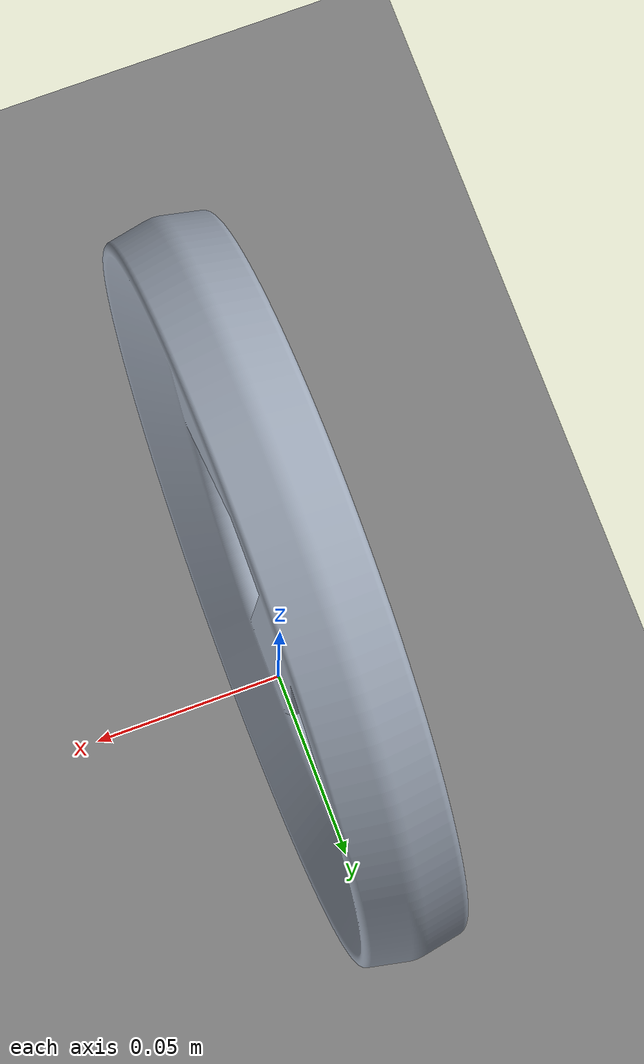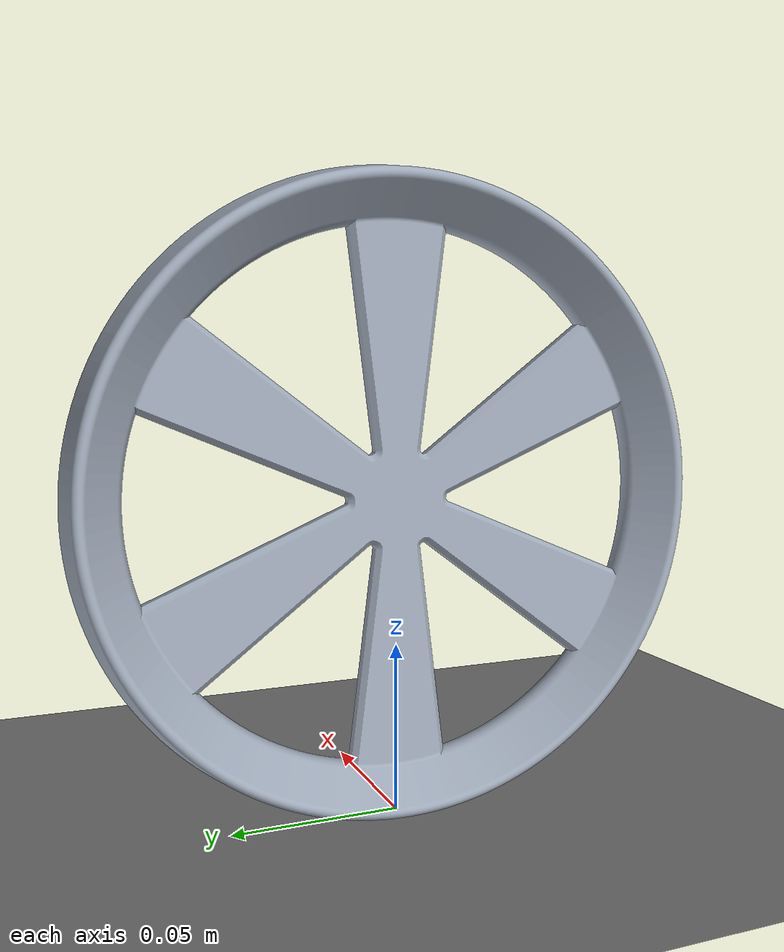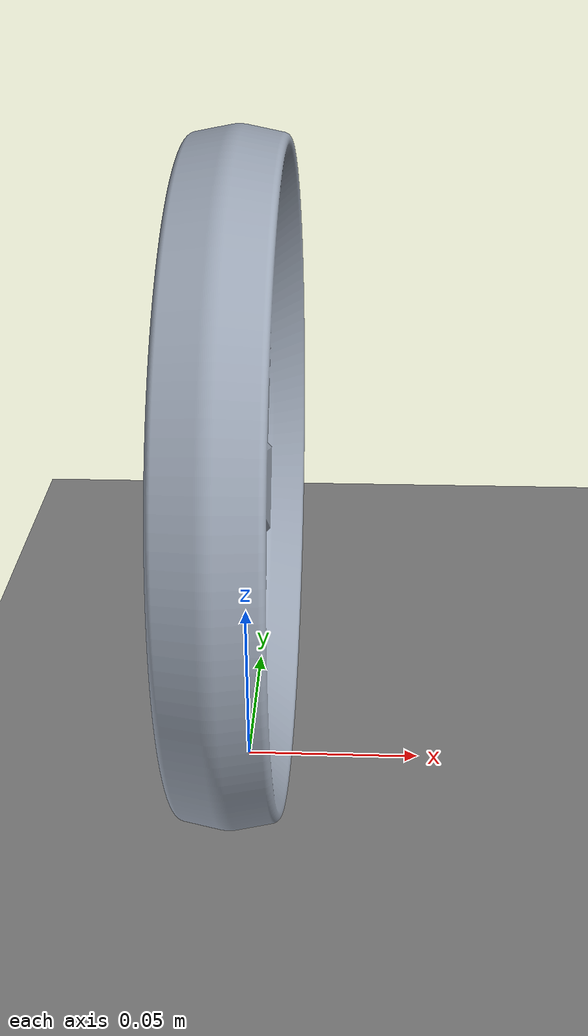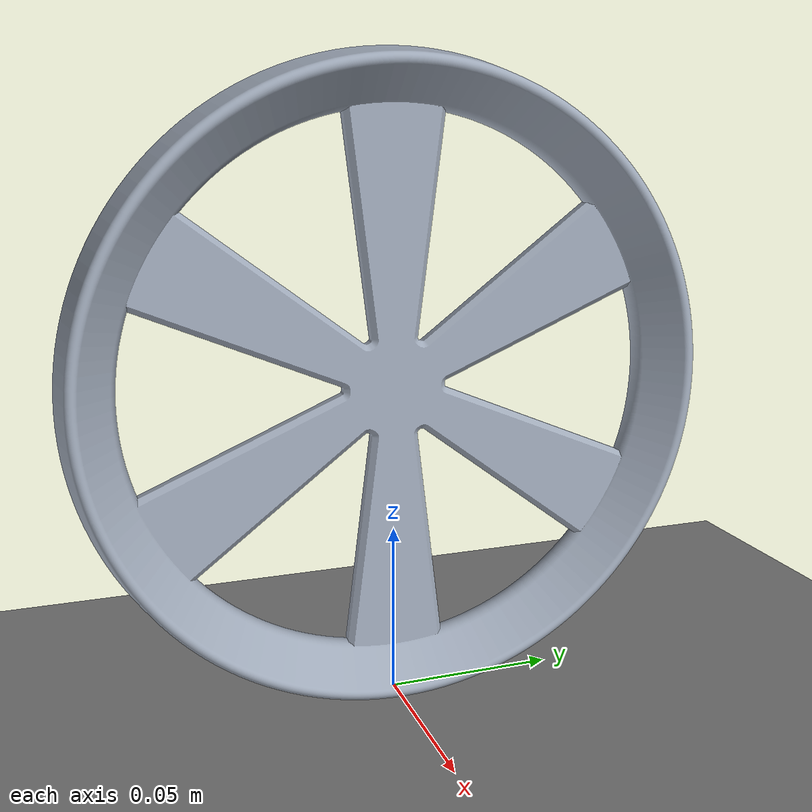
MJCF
<mujoco model="CAD reaction wheel">
  <!-- Onshape exported unitless STL coordinates in millimetres. -->
  <compiler angle="degree" meshdir="../assets" inertiafromgeom="true"/>

  <visual>
    <headlight ambient="0.4 0.4 0.4" diffuse="0.9 0.8 0.8"/>
  </visual>

  <asset>
    <texture name="checker" type="2d" builtin="checker"
             rgb1="0.15 0.15 0.15" rgb2="0.85 0.85 0.85"
             width="256" height="256"/>
    <material name="checker-floor" texture="checker"
              texrepeat="2 2" texuniform="true" reflectance="0.1"/>
    <!-- Classic MuJoCo viewer uses specular/shininess for a polished-metal look. -->
    <material name="polished-metal" rgba="0.62 0.66 0.72 1"
              specular="0.95" shininess="0.85"/>
    <mesh name="wheel-mesh" file="wheel.stl"
          scale="0.001 0.001 0.001" inertia="exact"/>
  </asset>

  <worldbody>
    <geom name="floor" type="plane" size="1 1 0.1"
          material="checker-floor"/>

    <!-- The STL axle is X. Its 92.8 mm radius rests just above the floor. -->
    <body name="wheel" pos="0 0 0.093">
      <geom name="wheel-visual" type="mesh" mesh="wheel-mesh"
            density="1250" contype="0" conaffinity="0"
            material="polished-metal"/>
    </body>
  </worldbody>
</mujoco>
